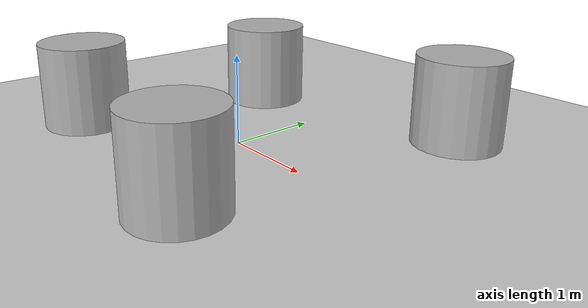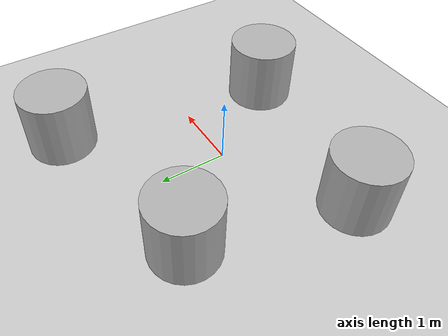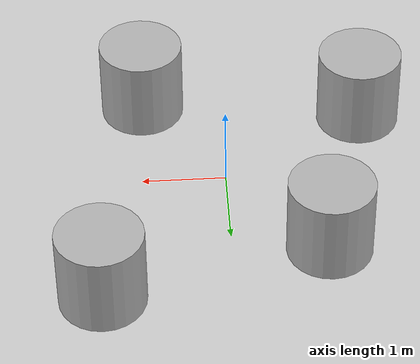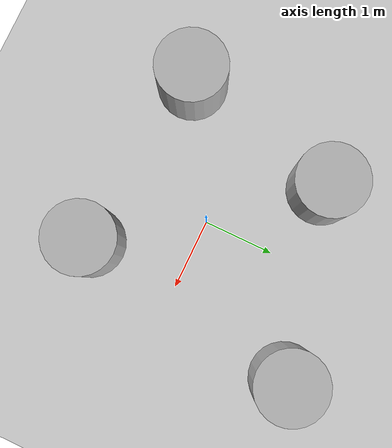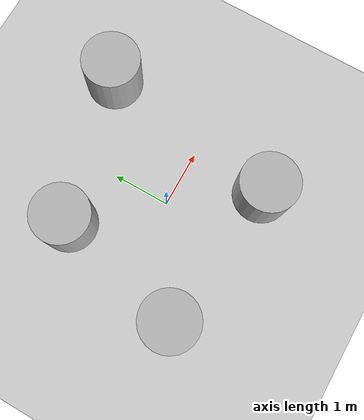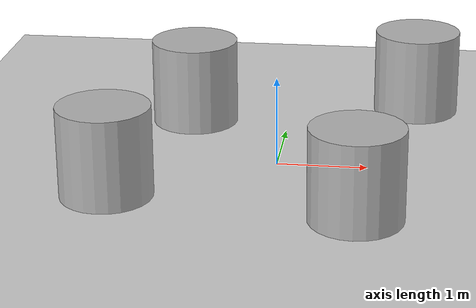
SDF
<sdf version="1.10">
 <world name="empty_world">
  <gravity>0 0 -9.8000000000000007</gravity>
  <atmosphere type="adiabatic"/>
  <physics name="default_physics" default="false" type="ode">
   <max_step_size>0.01</max_step_size>
   <real_time_factor>1</real_time_factor>
   <real_time_update_rate>1000</real_time_update_rate>
  </physics>
  <scene>
   <ambient>0.400000006 0.400000006 0.400000006 1</ambient>
   <background>0.699999988 0.699999988 0.699999988 1</background>
   <shadows>true</shadows>
  </scene>
  <magnetic_field>5.5644999999999998e-06 2.2875799999999999e-05 -4.2388400000000002e-05</magnetic_field>
  <model name="ground_plane">
   <static>true</static>
   <link name="link">
    <collision name="collision">
     <geometry><plane><normal>0 0 1</normal><size>100 100</size></plane></geometry>
     <surface>
      <contact><collide_bitmask>65535</collide_bitmask></contact>
      <friction><ode><mu>100</mu><mu2>50</mu2></ode></friction>
     </surface>
    </collision>
    <visual name="visual">
     <cast_shadows>false</cast_shadows>
     <geometry><plane><normal>0 0 1</normal><size>100 100</size></plane></geometry>
     <material>
      <script><uri>file://media/materials/scripts/gazebo.material</uri><name>Gazebo/Grey</name></script>
     </material>
    </visual>
    <inertial>
     <mass>1</mass>
     <inertia><ixx>1</ixx><ixy>0</ixy><ixz>0</ixz><iyy>1</iyy><iyz>0</iyz><izz>1</izz></inertia>
    </inertial>
   </link>
  </model>
  <model name="cylinder">
   <pose>1.4889629936057496 1.9025814135205559 0.49999952372088335 3.3254710432510088e-17 3.6094966469451789e-17 -6.8805975026157163e-18</pose>
   <link name="cylinder_link">
    <inertial>
     <inertia>
      <ixx>0.14580000000000001</ixx>
      <ixy>0</ixy>
      <ixz>0</ixz>
      <iyy>0.14580000000000001</iyy>
      <iyz>0</iyz>
      <izz>0.125</izz>
     </inertia>
     <mass>1</mass>
    </inertial>
    <collision name="cylinder_collision">
     <geometry><cylinder><radius>0.5</radius><length>1</length></cylinder></geometry>
    </collision>
    <visual name="cylinder_visual">
     <geometry><cylinder><radius>0.5</radius><length>1</length></cylinder></geometry>
     <material>
      <ambient>0.300000012 0.300000012 0.300000012 1</ambient>
      <diffuse>0.699999988 0.699999988 0.699999988 1</diffuse>
      <specular>1 1 1 1</specular>
     </material>
    </visual>
   </link>
   <static>false</static>
  </model>
  <model name="cylinder_0">
   <pose>0.95390293477368537 -1.3444761366119913 0.49999952372088335 6.48746842023413e-17 5.4489448707900354e-17 1.0463294555369926e-17</pose>
   <link name="cylinder_link">
    <inertial>
     <inertia>
      <ixx>0.14580000000000001</ixx>
      <ixy>0</ixy>
      <ixz>0</ixz>
      <iyy>0.14580000000000001</iyy>
      <iyz>0</iyz>
      <izz>0.125</izz>
     </inertia>
     <mass>1</mass>
    </inertial>
    <collision name="cylinder_collision">
     <geometry><cylinder><radius>0.5</radius><length>1</length></cylinder></geometry>
    </collision>
    <visual name="cylinder_visual">
     <geometry><cylinder><radius>0.5</radius><length>1</length></cylinder></geometry>
     <material>
      <ambient>0.300000012 0.300000012 0.300000012 1</ambient>
      <diffuse>0.699999988 0.699999988 0.699999988 1</diffuse>
      <specular>1 1 1 1</specular>
     </material>
    </visual>
   </link>
   <static>false</static>
  </model>
  <model name="cylinder_1">
   <pose>-1.1130846084649848 1.2701639883243303 0.49999952372088335 4.1872269043309541e-18 3.0409182180479614e-18 -9.1736957730880752e-19</pose>
   <link name="cylinder_link">
    <inertial>
     <inertia>
      <ixx>0.14580000000000001</ixx>
      <ixy>0</ixy>
      <ixz>0</ixz>
      <iyy>0.14580000000000001</iyy>
      <iyz>0</iyz>
      <izz>0.125</izz>
     </inertia>
     <mass>1</mass>
    </inertial>
    <collision name="cylinder_collision">
     <geometry><cylinder><radius>0.5</radius><length>1</length></cylinder></geometry>
    </collision>
    <visual name="cylinder_visual">
     <geometry><cylinder><radius>0.5</radius><length>1</length></cylinder></geometry>
     <material>
      <ambient>0.300000012 0.300000012 0.300000012 1</ambient>
      <diffuse>0.699999988 0.699999988 0.699999988 1</diffuse>
      <specular>1 1 1 1</specular>
     </material>
    </visual>
   </link>
   <static>false</static>
  </model>
  <model name="cylinder_2">
   <pose>-1.6882434321130315 -1.0201996414370182 0.49999952372088335 5.3484090904400079e-17 5.4895456459053699e-17 2.9838013748209607e-18</pose>
   <link name="cylinder_link">
    <inertial>
     <inertia>
      <ixx>0.14580000000000001</ixx>
      <ixy>0</ixy>
      <ixz>0</ixz>
      <iyy>0.14580000000000001</iyy>
      <iyz>0</iyz>
      <izz>0.125</izz>
     </inertia>
     <mass>1</mass>
    </inertial>
    <collision name="cylinder_collision">
     <geometry><cylinder><radius>0.5</radius><length>1</length></cylinder></geometry>
    </collision>
    <visual name="cylinder_visual">
     <geometry><cylinder><radius>0.5</radius><length>1</length></cylinder></geometry>
     <material>
      <ambient>0.300000012 0.300000012 0.300000012 1</ambient>
      <diffuse>0.699999988 0.699999988 0.699999988 1</diffuse>
      <specular>1 1 1 1</specular>
     </material>
    </visual>
   </link>
   <static>false</static>
  </model>
  <light name="sun" type="directional">
   <pose>0 0 10 0 0 0</pose>
   <intensity>1</intensity>
   <direction>-0.5 0.10000000000000001 -0.90000000000000002</direction>
   <diffuse>0.800000012 0.800000012 0.800000012 1</diffuse>
   <specular>0.200000003 0.200000003 0.200000003 1</specular>
   <attenuation>
    <range>1000</range>
    <linear>0.01</linear>
    <constant>0.90000000000000002</constant>
    <quadratic>0.001</quadratic>
   </attenuation>
   <spot><inner_angle>0</inner_angle><outer_angle>0</outer_angle><falloff>0</falloff></spot>
  </light>
 </world>
</sdf>
